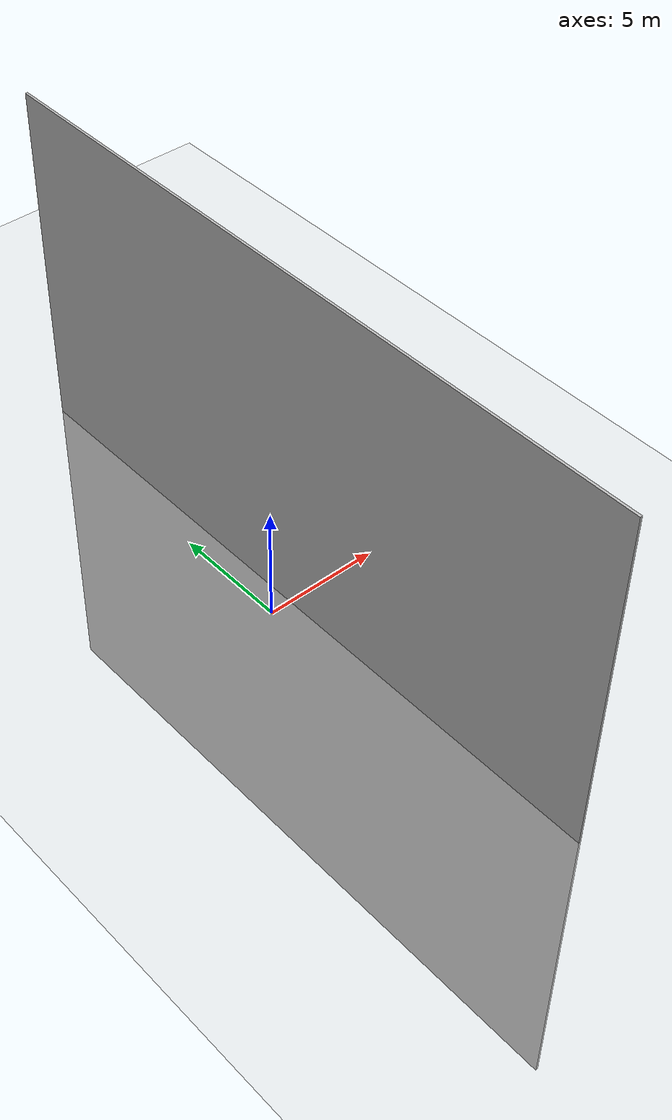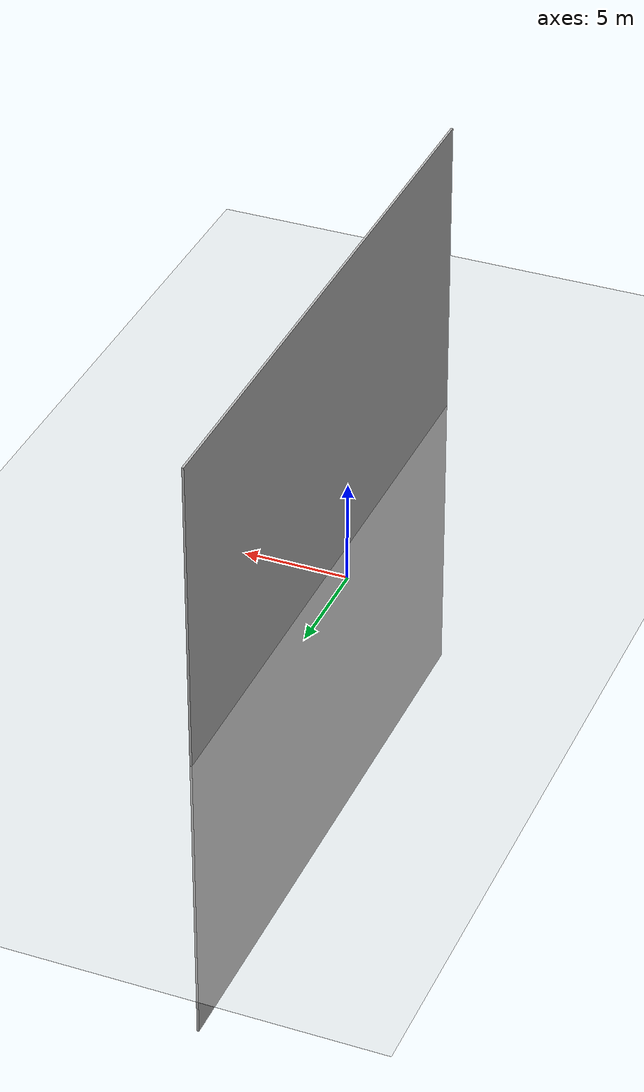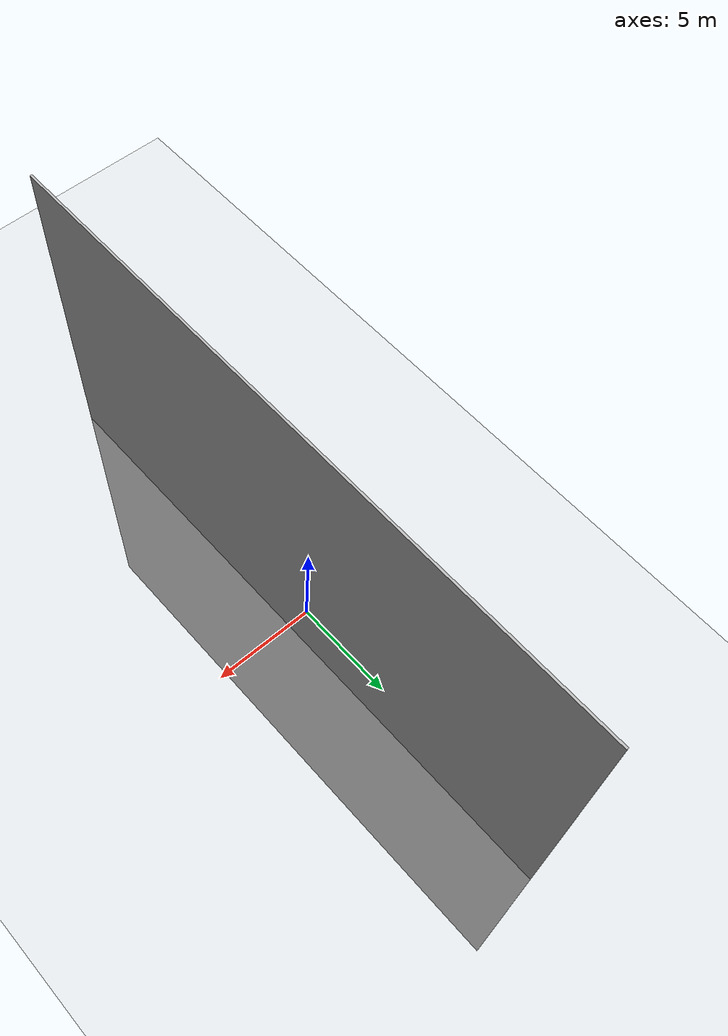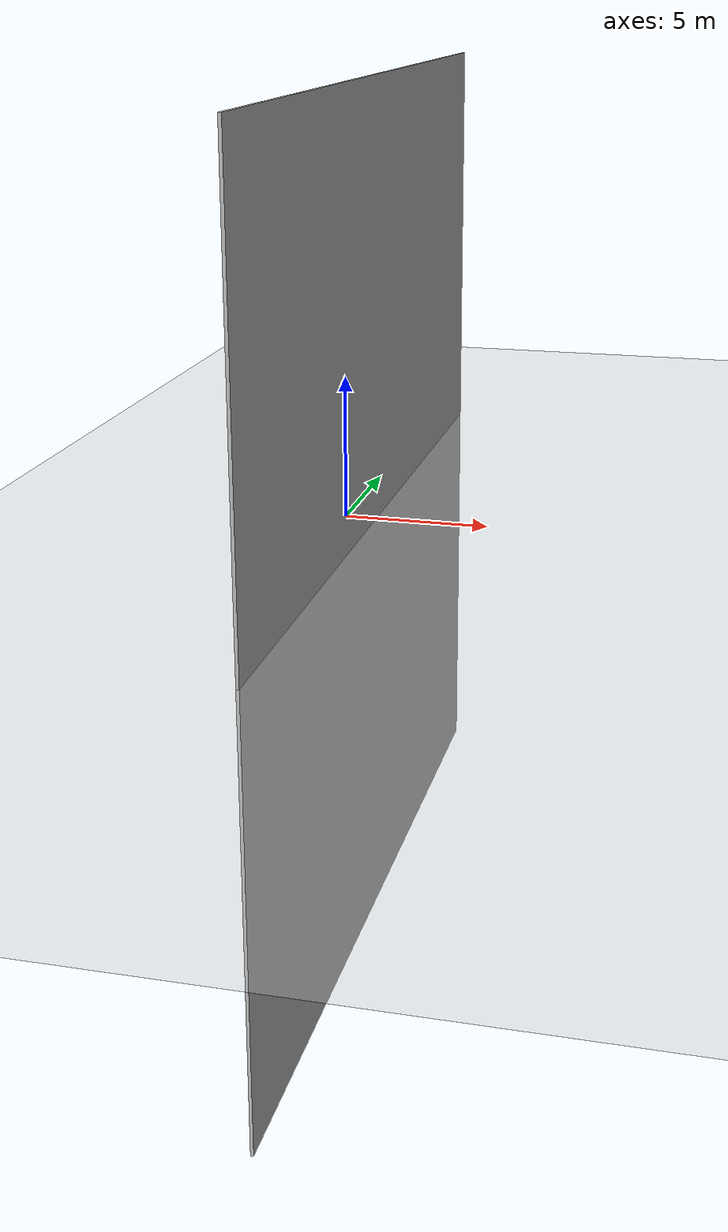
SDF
<?xml version="1.0"?>
<sdf version="1.6">
    <world name="default">
        <include>
            <uri>model://sun</uri>
        </include>

        <include>
            <uri>model://ground_plane</uri>
        </include>

        <model name="dummy_model">
            <pose>1.0 0.0 0.0 0.0 0.0 0.0</pose>
            <link name="link_1">
                <pose>0.0 0.0 0.0 0.0 0.0 0.0</pose>
                <inertial>
                    <pose>0.0 0.0 0.0 0.0 0.0 0.0</pose>
                    <inertia>
                        <ixx>1.0</ixx>
                        <ixy>0.0</ixy>
                        <ixz>0.0</ixz>
                        <iyy>1.0</iyy>
                        <iyz>0.0</iyz>
                        <izz>1.0</izz>
                    </inertia>
                    <mass>10.0</mass>
                </inertial>
                <visual name="visual_box">
                    <pose>0.0 0.0 0.0 0.0 0.0 0.0</pose>
                    <geometry>
                        <box>
                            <size>0.1 30.0 30.0</size>
                        </box>
                    </geometry>
                    <cast_shadows>true</cast_shadows>
                    <laser_retro>100.0</laser_retro>
                </visual>
                <collision name="collision_box">
                    <pose>0.0 0.0 0.0 0.0 0.0 0.0</pose>
                    <max_contacts>250</max_contacts>
                    <geometry>
                        <box>
                            <size>0.1 30.0 30.0</size>
                        </box>
                    </geometry>
                    <surface>
                        <friction>
                            <ode>
                                <mu>0.5</mu>
                                <mu2>0.2</mu2>
                                <fdir1>1.0 0 0</fdir1>
                                <slip1>0</slip1>
                                <slip2>0</slip2>
                            </ode>
                        </friction>
                        <bounce>
                            <restitution_coefficient>0</restitution_coefficient>
                            <threshold>1000000.0</threshold>
                        </bounce>
                        <contact>
                            <ode>
                                <soft_cfm>0</soft_cfm>
                                <soft_erp>0.2</soft_erp>
                                <kp>1e15</kp>
                                <kd>1e13</kd>
                                <max_vel>100.0</max_vel>
                                <min_depth>0.0001</min_depth>
                            </ode>
                        </contact>
                    </surface>
                    <laser_retro>100.0</laser_retro>
                </collision>
                <gravity>true</gravity>
                <self_collide>true</self_collide>
                <kinematic>false</kinematic>
            </link>
            <static>false</static>
        </model>
    </world>
</sdf>
